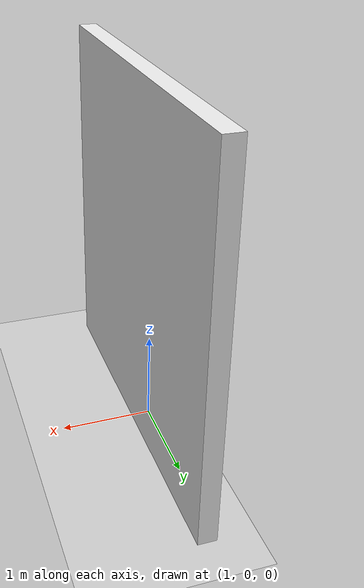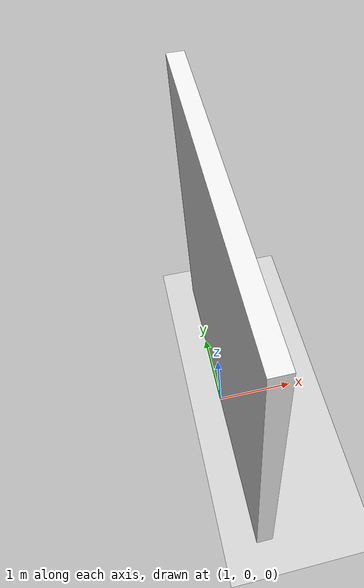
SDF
<?xml version="1.0" ?>
<sdf version="1.4">
  <world name="default">

    <!-- A global light source -->
    <light name='sun' type='directional'>
      <cast_shadows>1</cast_shadows>
      <pose frame=''>0 0 10 3.14 3.14 0</pose>
      <diffuse>0.8 0.8 0.8 1</diffuse>
      <specular>0.1 0.1 0.1 1</specular>
      <attenuation>
        <range>1000</range>
        <constant>0.9</constant>
        <linear>0.01</linear>
        <quadratic>0.001</quadratic>
      </attenuation>
      <direction>-0.5 0.5 -1</direction>
    </light>

    <!-- A ground plane -->
    <include>
      <uri>model://ground_plane</uri>
    </include>

    <!-- Wall -->
    <model name='wall'>

      <link name='back_wall'>
        <pose frame=''>1.1 0 2 0 0 0</pose>
        <inertial>
          <mass>10</mass>
          <inertia>
            <ixx>0.166667</ixx>
            <ixy>0</ixy>
            <ixz>0</ixz>
            <iyy>0.166667</iyy>
            <iyz>0</iyz>
            <izz>0.166667</izz>
          </inertia>
        </inertial>
        <collision name='collision'>
          <geometry>
            <box>
              <size>0.2 4 4</size>
            </box>
          </geometry>
          <surface>
            <friction>
              <ode>
                <mu>1.16</mu>
                <mu2>1.16</mu2>
                <slip1>0</slip1>
                <slip2>0</slip2>
              </ode>
            </friction>
          </surface>
          <max_contacts>10</max_contacts>
        </collision>
        <visual name='visual'>
          <geometry>
            <box>
              <size>0.2 4 4</size>
            </box>
          </geometry>
          <material>
            <script>
              <name>Gazebo/White</name>
              <uri>file://media/materials/scripts/gazebo.material</uri>
            </script>
          </material>
        </visual>
        <self_collide>0</self_collide>
        <kinematic>0</kinematic>
      </link>

      <joint name='ground_link' type='fixed'>
        <parent>world</parent>
        <child>back_wall</child>
        <pose frame=''>0 0 0 0 -0 0</pose>
      </joint>

    </model>

    <!-- Only one ROS interface plugin is required per world, as any other plugin can connect a Gazebo
         topic to a ROS topic (or vise versa). -->
    <plugin name="ros_interface_plugin" filename="librotors_gazebo_ros_interface_plugin.so"/>

    <physics name='default_physics' default='0' type='ode'>
      <gravity>0 0 -9.8066</gravity>
      <ode>
        <solver>
          <type>quick</type>
          <iters>10</iters>
          <sor>1.3</sor>
          <use_dynamic_moi_rescaling>0</use_dynamic_moi_rescaling>
        </solver>
        <constraints>
          <cfm>0</cfm>
          <erp>0.2</erp>
          <contact_max_correcting_vel>100</contact_max_correcting_vel>
          <contact_surface_layer>0.001</contact_surface_layer>
        </constraints>
      </ode>
      <max_step_size>0.002</max_step_size>
      <real_time_factor>2</real_time_factor>
      <real_time_update_rate>1000</real_time_update_rate>
      <magnetic_field>6e-06 2.3e-05 -4.2e-05</magnetic_field>
    </physics>

    <gui fullscreen='0'>
      <camera name='user_camera'>
        <pose frame=''>-2 -4 3 0 0.39270 0.78534</pose>
      </camera>
    </gui>

  </world>
</sdf>
